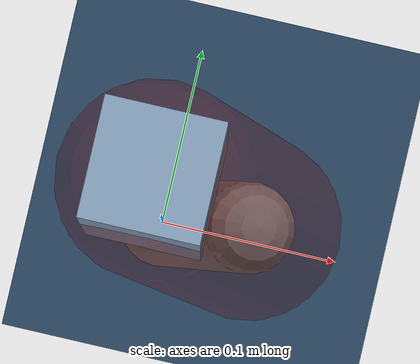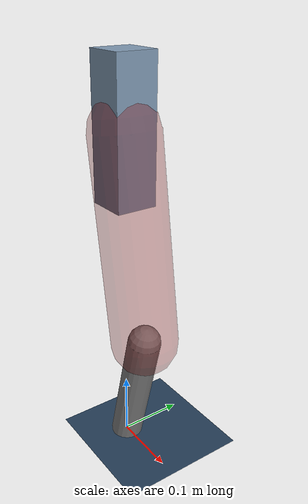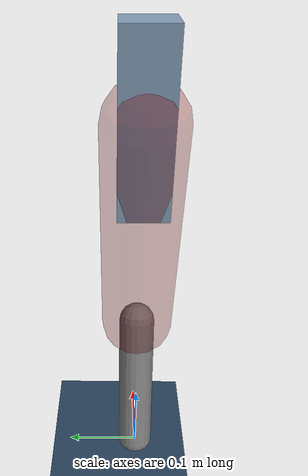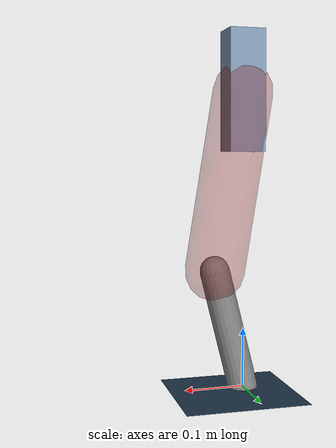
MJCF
<mujoco model="Hopper2D">
	<compiler inertiafromgeom="true" angle="radian" />
	<option timestep="0.001" integrator="implicit" cone="elliptic" solver="Newton" tolerance="1e-10" />

	<default>
		<geom contype="1" conaffinity="1" condim="3" friction="2 0.005 0.0001" solref="0.005 1" />
		<joint limited="true" damping="0.1" />
	</default>

	<asset>
		<texture name="skybox" type="skybox" builtin="gradient" rgb1=".4 .6 .8" rgb2="0 0 0" width="800" height="800" />
		<texture name="grid" type="2d" builtin="checker" rgb1=".1 .2 .3" rgb2=".2 .3 .4" width="300" height="300" mark="edge" markrgb=".2 .3 .4" />
		<material name="ground" texture="grid" texrepeat="1 1" texuniform="true" reflectance="0.1" />
		<material name="leg" rgba="0.5 0.6 0.7 1" />
	</asset>

	<worldbody>

		<geom name="floor" type="plane" size="5 5 0.25" material="ground" />

		<light directional="false" diffuse="0.8 0.8 0.8" specular="0.3 0.3 0.3" pos="0 0 2" dir="0 0 -1" />
		<light mode="targetbodycom" target="base" directional="false" diffuse="0.8 0.8 0.8" specular="0.3 0.3 0.3" pos="0 0 2" dir="0 0 -1" />

		<camera name="fixed" pos="0 -2 1" xyaxes="1 0 0 0 0 1" />
		<camera name="tracking" mode="trackcom" pos="0 -3 1" />

		<body name="root" pos="0 0 0.4984716125142544">
			<joint name="slide_x" type="slide" axis="1 0 0" range="-100 100" />
			<joint name="slide_z" type="slide" axis="0 0 1" range="0 10" />

			<body name="base" pos="0 0 0">
				<geom name="torso" type="box" size="0.03 0.03 0.1" mass="2.476" material="leg" />

				<body name="link1" pos="0 0 0" euler="0 1.407399980691748 0">
					<joint type="hinge" axis="0 -1 0" pos="0 0 0" name="hinge1" limited="true" range="-3.14 3.14" stiffness="0" damping="0.1" />
					<geom name="thigh" type="capsule" fromto="0 0 0 0.302578034899496 0 0" size="0.05" rgba="0.5 0 0 0.3" mass="0.9957184977185888" />

					<body name="link2" pos="0.302578034899496 0 0" euler="0 0.404791636107193 0">
						<joint type="hinge" axis="0 -1 0" pos="0 0 0" name="hinge2" limited="true" range="-3.14 3.14" stiffness="0" damping="0.1" />
						<geom name="shank" type="capsule" fromto="0 0 0 0.2058935776147585 0 0" size="0.025" mass="0.4058148620918068" />

					</body>
				</body>
			</body>
		</body>
	</worldbody>

	<actuator>
		<motor name="torque1" joint="hinge1" ctrlrange="-88.84517287608507 88.84517287608507" ctrllimited="true" gear="1" />
		<motor name="torque2" joint="hinge2" ctrlrange="-83.28910133248299 83.28910133248299" ctrllimited="true" gear="1" />
	</actuator>
</mujoco>
